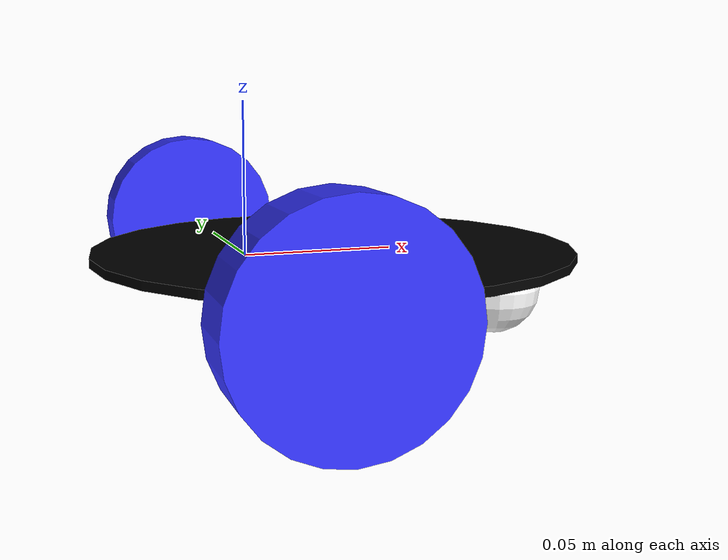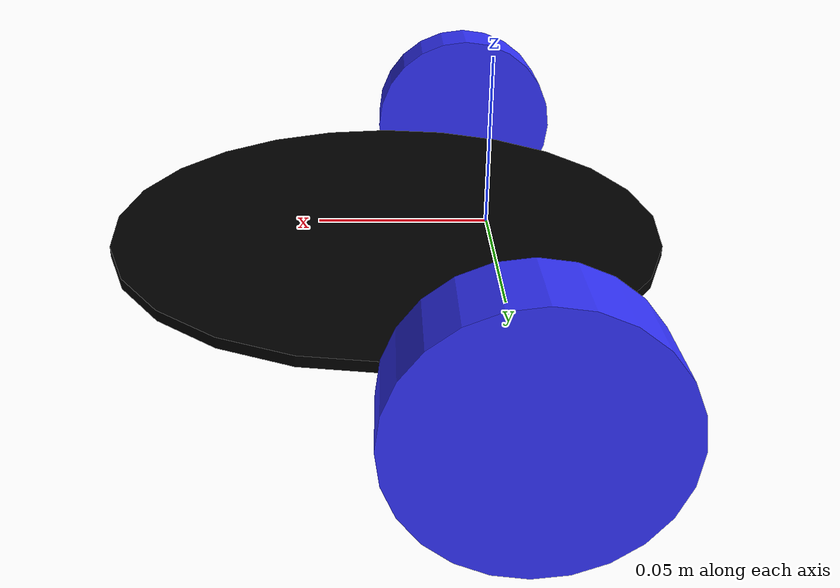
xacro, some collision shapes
<?xml version="1.0"?>
<robot xmlns:xacro="http://www.ros.org/wiki/xacro" >

    <xacro:include filename="inertial_macros.xacro"/>

    <material name="white">
        <color rgba="1 1 1 1"/>
    </material>

    <material name="black">
        <color rgba="0 0 0 1"/>
    </material>

    <material name="orange">
        <color rgba="1 0.3 0.1 1"/>
    </material>

    <material name="green">
        <color rgba="0 1 0 1"/>
    </material>

    <material name="yellow">
        <color rgba="1 1 0 1"/>
    </material>

    <material name="blue">
        <color rgba="0.2 0.2 1 1"/>
    </material>

    <material name="red">
        <color rgba="1 0 0 1"/>
    </material>

    <!-- BASE LINK -->

    <link name="base_link">

    </link>

    <!-- BASE_FOOTPRINT LINK -->

    <joint name="base_footprint_joint" type="fixed">
        <parent link="base_link"/>
        <child link="base_footprint"/>
        <origin xyz="0 0 0" rpy="0 0 0"/>
    </joint>

    <link name="base_footprint">
    </link>

    <!-- CHASSIS LINK -->

    <joint name="chassis_joint" type="fixed">
        <parent link="base_link"/>
        <child link="chassis"/>
        <origin xyz="-0.05 0 0"/>
    </joint>

    <link name="chassis">
        <visual>
            <origin xyz="0.08 0 0"/>
            <geometry>
                <mesh filename="package://slam_bot/meshes/Chassis.stl" scale="0.001 0.001 0.001" />
            </geometry>
            <material name="black"/>
        </visual>

        <collision>
            <origin xyz="0.08 0 0"/>
            <geometry>
                <cylinder radius="0.08" length="0.003"/>
            </geometry>
        </collision>

        <xacro:inertial_cylinder mass="0.1" length="0.005" radius="0.08">
            <origin xyz="0.08 0 0" rpy="0 0 0"/>
        </xacro:inertial_cylinder>
    </link>

    <gazebo reference="chassis">
        <material>Gazebo/Black</material>
    </gazebo>

    <!-- LEFT WHEEL LINK -->

    <joint name="left_wheel_joint" type="continuous">
        <parent link="base_link"/>
        <child link="left_wheel"/>
        <origin xyz="0 0.1 0" rpy="-${pi/2} 0 0" />
        <axis xyz="0 0 1"/>
    </joint>

    <link name="left_wheel">
        <visual>
            <geometry>
                <cylinder radius="0.0325" length="0.02"/>
            </geometry>
            <material name="blue"/>
        </visual>

        <collision>
            <geometry>
                <sphere radius="0.0325" />
            </geometry>
        </collision>

        <xacro:inertial_cylinder mass="0.1" length="0.02" radius="0.0325">
            <origin xyz="0 0 0" rpy="0 0 0"/>
        </xacro:inertial_cylinder>
    </link>

    <gazebo reference="left_wheel">
        <material>Gazebo/Blue</material>
    </gazebo>

    <!-- RIGHT WHEEL LINK -->

    <joint name="right_wheel_joint" type="continuous">
        <parent link="base_link"/>
        <child link="right_wheel"/>
        <origin xyz="0 -0.1 0" rpy="${pi/2} 0 0" />
        <axis xyz="0 0 -1"/>
    </joint>

    <link name="right_wheel">
        <visual>
            <geometry>
                <cylinder radius="0.0325" length="0.02"/>
            </geometry>
            <material name="blue"/>
        </visual>

        <collision>
            <geometry>
                <sphere radius="0.0325" />
            </geometry>
        </collision>

        <xacro:inertial_cylinder mass="0.1" length="0.02" radius="0.0325">
            <origin xyz="0 0 0" rpy="0 0 0"/>
        </xacro:inertial_cylinder>
    </link>

    <gazebo reference="right_wheel">
        <material>Gazebo/Blue</material>
    </gazebo>

    <!-- CASTER WHEEL LINK -->

    <joint name="caster_wheel_joint" type="fixed">
        <parent link="chassis"/>
        <child link="caster_wheel"/>
        <origin xyz="0.14 0 -0.01625"/>
    </joint>

    <link name="caster_wheel">
        <visual>
            <geometry>
                <sphere radius="0.01625"/>
            </geometry>
            <material name="white"/>
        </visual>
        <collision>
            <geometry>
                <sphere radius="0.01625"/>
            </geometry>
        </collision>
        <xacro:inertial_sphere mass="0.1" radius="0.01625">
            <origin xyz="0 0 0" rpy="0 0 0"/>
        </xacro:inertial_sphere>
    </link>

    <gazebo reference="caster_wheel">
        <material>Gazebo/White</material>
        <mu1 value="0.001"/>
        <mu2 value="0.001"/>
    </gazebo>

</robot>
